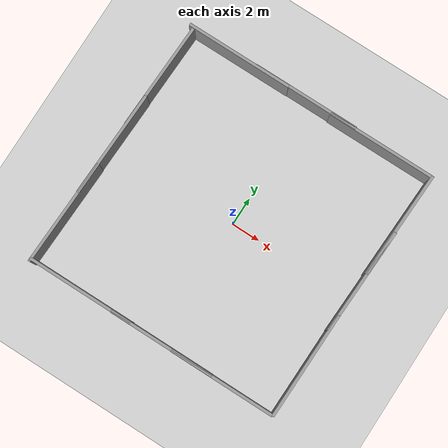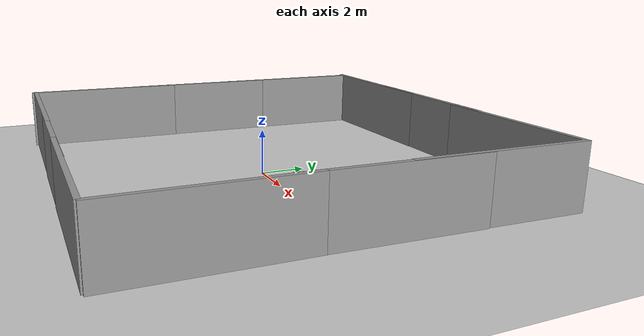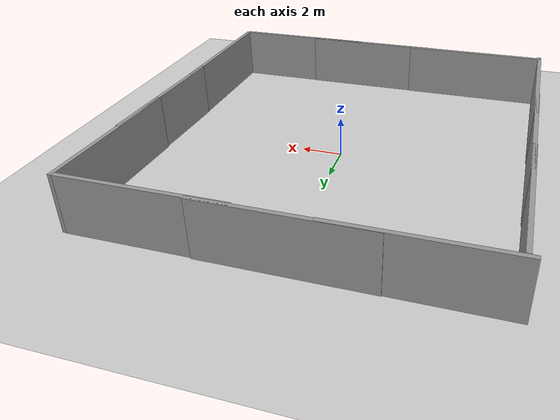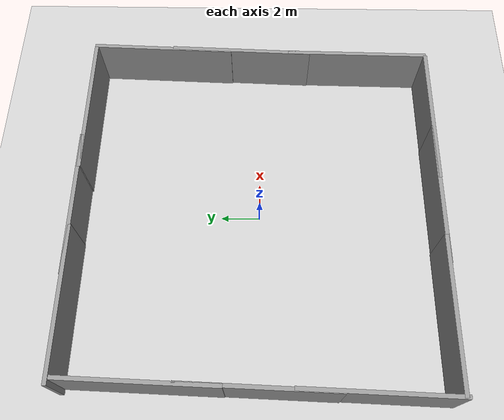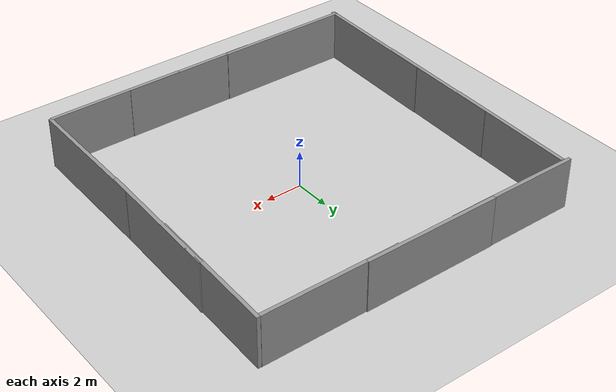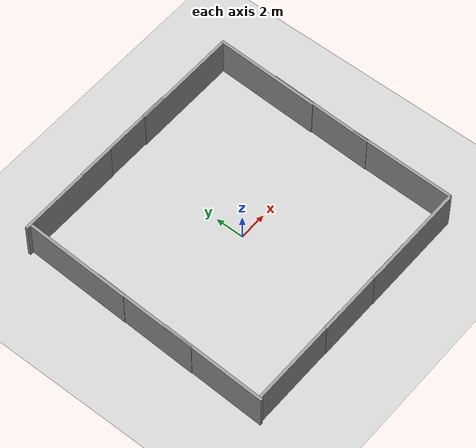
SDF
<sdf version="1.6">
 <world name="default">
  <light name="sun" type="directional">
   <pose>0 0 10 0 -0 0</pose>
   <diffuse>0.8 0.8 0.8 1</diffuse>
   <specular>0.1 0.1 0.1 1</specular>
   <attenuation>
    <range>1000</range>
    <constant>0.9</constant>
    <linear>0.01</linear>
    <quadratic>0.001</quadratic>
   </attenuation>
   <direction>-0.5 0.5 -1</direction>
  </light>
  <model name="ground_plane">
   <static>1</static>
   <link name="link">
    <collision name="collision">
     <geometry><plane><normal>0 0 1</normal><size>100 100</size></plane></geometry>
     <surface><friction><ode><mu>100</mu><mu2>50</mu2></ode></friction></surface>
    </collision>
    <visual name="visual">
     <cast_shadows>0</cast_shadows>
     <geometry><plane><normal>0 0 1</normal><size>100 100</size></plane></geometry>
     <material>
      <script><uri>file://media/materials/scripts/gazebo.material</uri><name>Gazebo/Grey</name></script>
     </material>
    </visual>
   </link>
  </model>
  <physics name="default_physics" default="0" type="ode">
   <max_step_size>0.01</max_step_size>
   <real_time_factor>1</real_time_factor>
   <real_time_update_rate>100</real_time_update_rate>
  </physics>
  <gravity>0 0 -9.8</gravity>
  <magnetic_field>6e-06 2.3e-05 -4.2e-05</magnetic_field>
  <atmosphere type="adiabatic"/>
  <scene><ambient>0.4 0.4 0.4 1</ambient><background>0.7 0.7 0.7 1</background><shadows>1</shadows></scene>
  <spherical_coordinates>
   <surface_model>EARTH_WGS84</surface_model>
   <latitude_deg>0</latitude_deg>
   <longitude_deg>0</longitude_deg>
   <elevation>0</elevation>
   <heading_deg>0</heading_deg>
  </spherical_coordinates>
  <model name="grey_wall">
   <static>1</static>
   <link name="link">
    <pose>0 0 1.4 0 -0 0</pose>
    <collision name="collision"><geometry><box><size>7.5 0.2 2.8</size></box></geometry></collision>
    <visual name="visual">
     <cast_shadows>0</cast_shadows>
     <geometry><box><size>7.5 0.2 2.8</size></box></geometry>
     <material>
      <script>
       <uri>model://grey_wall/materials/scripts</uri>
       <uri>model://grey_wall/materials/textures</uri>
       <name>vrc/grey_wall</name>
      </script>
     </material>
    </visual>
   </link>
   <pose>-5.35579 9.09351 0 0 -0 0</pose>
  </model>
  <model name="grey_wall_0">
   <static>1</static>
   <link name="link">
    <pose>0 0 1.4 0 -0 0</pose>
    <collision name="collision"><geometry><box><size>7.5 0.2 2.8</size></box></geometry></collision>
    <visual name="visual">
     <cast_shadows>0</cast_shadows>
     <geometry><box><size>7.5 0.2 2.8</size></box></geometry>
     <material>
      <script>
       <uri>model://grey_wall/materials/scripts</uri>
       <uri>model://grey_wall/materials/textures</uri>
       <name>vrc/grey_wall</name>
      </script>
     </material>
    </visual>
   </link>
   <pose>5.29311 9.07197 0 0 -0 0</pose>
  </model>
  <model name="grey_wall_1">
   <static>1</static>
   <link name="link">
    <pose>0 0 1.4 0 -0 0</pose>
    <collision name="collision"><geometry><box><size>7.5 0.2 2.8</size></box></geometry></collision>
    <visual name="visual">
     <cast_shadows>0</cast_shadows>
     <geometry><box><size>7.5 0.2 2.8</size></box></geometry>
     <material>
      <script>
       <uri>model://grey_wall/materials/scripts</uri>
       <uri>model://grey_wall/materials/textures</uri>
       <name>vrc/grey_wall</name>
      </script>
     </material>
    </visual>
   </link>
   <pose>-0.352855 9.12055 0 0 -0 0</pose>
  </model>
  <model name="grey_wall_2">
   <static>1</static>
   <link name="link">
    <pose>0 0 1.4 0 -0 0</pose>
    <collision name="collision"><geometry><box><size>7.5 0.2 2.8</size></box></geometry></collision>
    <visual name="visual">
     <cast_shadows>0</cast_shadows>
     <geometry><box><size>7.5 0.2 2.8</size></box></geometry>
     <material>
      <script>
       <uri>model://grey_wall/materials/scripts</uri>
       <uri>model://grey_wall/materials/textures</uri>
       <name>vrc/grey_wall</name>
      </script>
     </material>
    </visual>
   </link>
   <pose>-5.63212 -8.88732 0 0 -0 0</pose>
  </model>
  <model name="grey_wall_2_clone">
   <static>1</static>
   <link name="link">
    <pose>0 0 1.4 0 -0 0</pose>
    <collision name="collision"><geometry><box><size>7.5 0.2 2.8</size></box></geometry></collision>
    <visual name="visual">
     <cast_shadows>0</cast_shadows>
     <geometry><box><size>7.5 0.2 2.8</size></box></geometry>
     <material>
      <script>
       <uri>model://grey_wall/materials/scripts</uri>
       <uri>model://grey_wall/materials/textures</uri>
       <name>vrc/grey_wall</name>
      </script>
     </material>
    </visual>
   </link>
   <pose>4.91037 -8.92851 0 0 -0 0</pose>
  </model>
  <model name="grey_wall_2_clone_clone">
   <static>1</static>
   <link name="link">
    <pose>0 0 1.4 0 -0 0</pose>
    <collision name="collision"><geometry><box><size>7.5 0.2 2.8</size></box></geometry></collision>
    <visual name="visual">
     <cast_shadows>0</cast_shadows>
     <geometry><box><size>7.5 0.2 2.8</size></box></geometry>
     <material>
      <script>
       <uri>model://grey_wall/materials/scripts</uri>
       <uri>model://grey_wall/materials/textures</uri>
       <name>vrc/grey_wall</name>
      </script>
     </material>
    </visual>
   </link>
   <pose>0.420082 -8.90966 0 0 -0 0</pose>
  </model>
  <model name="grey_wall_3">
   <static>1</static>
   <link name="link">
    <pose>0 0 1.4 0 -0 0</pose>
    <collision name="collision"><geometry><box><size>7.5 0.2 2.8</size></box></geometry></collision>
    <visual name="visual">
     <cast_shadows>0</cast_shadows>
     <geometry><box><size>7.5 0.2 2.8</size></box></geometry>
     <material>
      <script>
       <uri>model://grey_wall/materials/scripts</uri>
       <uri>model://grey_wall/materials/textures</uri>
       <name>vrc/grey_wall</name>
      </script>
     </material>
    </visual>
   </link>
   <pose>-9.20757 -5.34353 0 0 -0 1.53501</pose>
  </model>
  <model name="grey_wall_3_clone">
   <static>1</static>
   <link name="link">
    <pose>0 0 1.4 0 -0 0</pose>
    <collision name="collision"><geometry><box><size>7.5 0.2 2.8</size></box></geometry></collision>
    <visual name="visual">
     <cast_shadows>0</cast_shadows>
     <geometry><box><size>7.5 0.2 2.8</size></box></geometry>
     <material>
      <script>
       <uri>model://grey_wall/materials/scripts</uri>
       <uri>model://grey_wall/materials/textures</uri>
       <name>vrc/grey_wall</name>
      </script>
     </material>
    </visual>
   </link>
   <pose>-8.88618 5.2293 0 0 -0 1.53501</pose>
  </model>
  <model name="grey_wall_3_clone_clone">
   <static>1</static>
   <link name="link">
    <pose>0 0 1.4 0 -0 0</pose>
    <collision name="collision"><geometry><box><size>7.5 0.2 2.8</size></box></geometry></collision>
    <visual name="visual">
     <cast_shadows>0</cast_shadows>
     <geometry><box><size>7.5 0.2 2.8</size></box></geometry>
     <material>
      <script>
       <uri>model://grey_wall/materials/scripts</uri>
       <uri>model://grey_wall/materials/textures</uri>
       <name>vrc/grey_wall</name>
      </script>
     </material>
    </visual>
   </link>
   <pose>-9.0499 -0.062741 0 0 -0 1.53501</pose>
  </model>
  <model name="grey_wall_3_clone_0">
   <static>1</static>
   <link name="link">
    <pose>0 0 1.4 0 -0 0</pose>
    <collision name="collision"><geometry><box><size>7.5 0.2 2.8</size></box></geometry></collision>
    <visual name="visual">
     <cast_shadows>0</cast_shadows>
     <geometry><box><size>7.5 0.2 2.8</size></box></geometry>
     <material>
      <script>
       <uri>model://grey_wall/materials/scripts</uri>
       <uri>model://grey_wall/materials/textures</uri>
       <name>vrc/grey_wall</name>
      </script>
     </material>
    </visual>
   </link>
   <pose>8.75364 -5.21012 0 0 -0 1.55449</pose>
  </model>
  <model name="grey_wall_3_clone_1">
   <static>1</static>
   <link name="link">
    <pose>0 0 1.4 0 -0 0</pose>
    <collision name="collision"><geometry><box><size>7.5 0.2 2.8</size></box></geometry></collision>
    <visual name="visual">
     <cast_shadows>0</cast_shadows>
     <geometry><box><size>7.5 0.2 2.8</size></box></geometry>
     <material>
      <script>
       <uri>model://grey_wall/materials/scripts</uri>
       <uri>model://grey_wall/materials/textures</uri>
       <name>vrc/grey_wall</name>
      </script>
     </material>
    </visual>
   </link>
   <pose>8.90029 1.11034 0 0 -0 1.53501</pose>
  </model>
  <model name="grey_wall_3_clone_2">
   <static>1</static>
   <link name="link">
    <pose>0 0 1.4 0 -0 0</pose>
    <collision name="collision"><geometry><box><size>7.5 0.2 2.8</size></box></geometry></collision>
    <visual name="visual">
     <cast_shadows>0</cast_shadows>
     <geometry><box><size>7.5 0.2 2.8</size></box></geometry>
     <material>
      <script>
       <uri>model://grey_wall/materials/scripts</uri>
       <uri>model://grey_wall/materials/textures</uri>
       <name>vrc/grey_wall</name>
      </script>
     </material>
    </visual>
   </link>
   <pose>9.00225 5.41219 0 0 -0 1.53501</pose>
  </model>
 </world>
</sdf>
